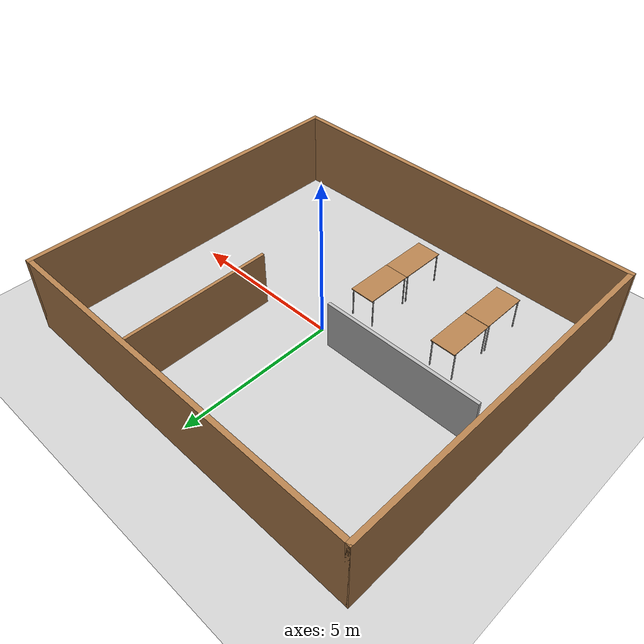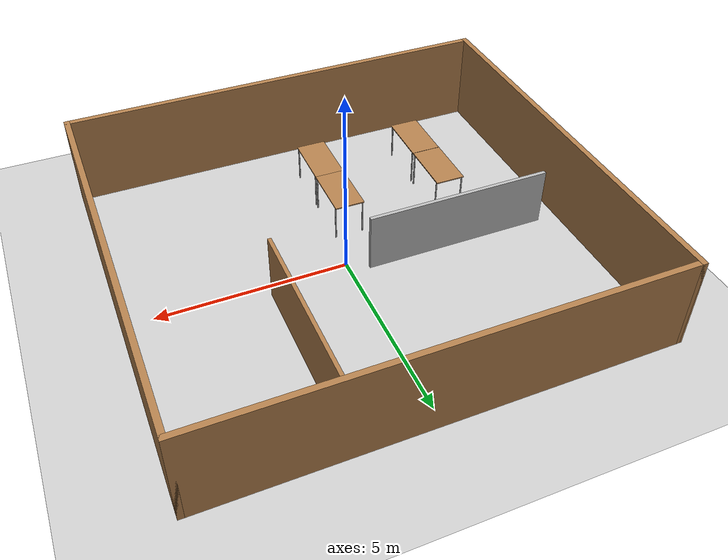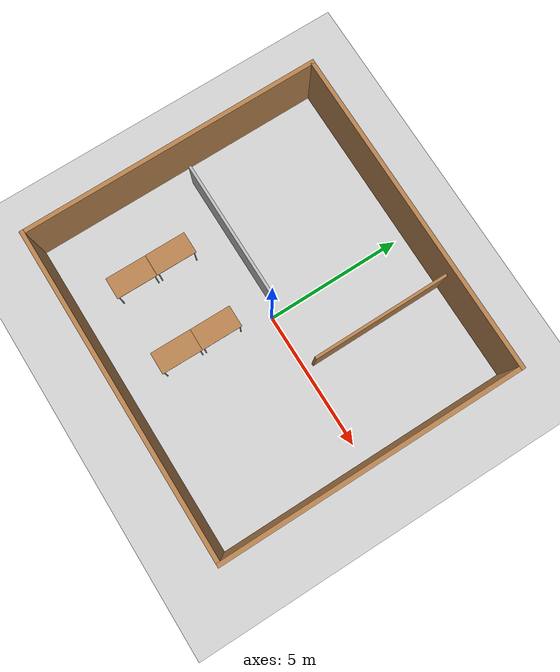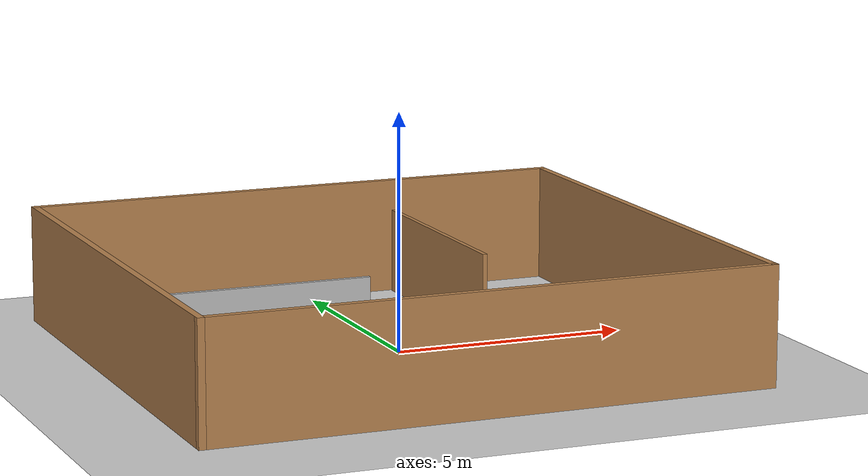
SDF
<sdf version="1.7">
 <world name="default">
  <light name="sun" type="directional">
   <pose>0 0 10 0 -0 0</pose>
   <diffuse>0.8 0.8 0.8 1</diffuse>
   <specular>0.2 0.2 0.2 1</specular>
   <attenuation>
    <range>1000</range>
    <constant>0.9</constant>
    <linear>0.01</linear>
    <quadratic>0.001</quadratic>
   </attenuation>
   <direction>-0.5 0.1 -0.9</direction>
   <spot><inner_angle>0</inner_angle><outer_angle>0</outer_angle><falloff>0</falloff></spot>
  </light>
  <model name="ground_plane">
   <static>1</static>
   <link name="link">
    <collision name="collision">
     <geometry><plane><normal>0 0 1</normal><size>100 100</size></plane></geometry>
     <surface>
      <contact><collide_bitmask>65535</collide_bitmask></contact>
      <friction><ode><mu>100</mu><mu2>50</mu2></ode></friction>
     </surface>
    </collision>
    <visual name="visual">
     <cast_shadows>0</cast_shadows>
     <geometry><plane><normal>0 0 1</normal><size>100 100</size></plane></geometry>
     <material>
      <script><uri>file://media/materials/scripts/gazebo.material</uri><name>Gazebo/Grey</name></script>
     </material>
    </visual>
   </link>
  </model>
  <gravity>0 0 -9.8</gravity>
  <magnetic_field>6e-06 2.3e-05 -4.2e-05</magnetic_field>
  <atmosphere type="adiabatic"/>
  <physics type="ode">
   <max_step_size>0.001</max_step_size>
   <real_time_factor>1</real_time_factor>
   <real_time_update_rate>1000</real_time_update_rate>
  </physics>
  <scene><ambient>0.4 0.4 0.4 1</ambient><background>0.7 0.7 0.7 1</background><shadows>1</shadows></scene>
  <spherical_coordinates>
   <surface_model>EARTH_WGS84</surface_model>
   <latitude_deg>0</latitude_deg>
   <longitude_deg>0</longitude_deg>
   <elevation>0</elevation>
   <heading_deg>0</heading_deg>
  </spherical_coordinates>
  <model name="wall_frame_1">
   <pose>-0.21485 -0.002157 0 0 -0 0</pose>
   <link name="Wall_10">
    <collision name="Wall_10_Collision">
     <geometry><box><size>11 0.15 2.5</size></box></geometry>
     <pose>0 0 1.25 0 -0 0</pose>
    </collision>
    <visual name="Wall_10_Visual">
     <pose>0 0 1.25 0 -0 0</pose>
     <geometry><box><size>11 0.15 2.5</size></box></geometry>
     <material>
      <script><uri>file://media/materials/scripts/gazebo.material</uri><name>Gazebo/Wood</name></script>
      <ambient>1 1 1 1</ambient>
     </material>
     <meta><layer>0</layer></meta>
    </visual>
    <pose>-5.925 -0 0 0 -0 1.5708</pose>
   </link>
   <link name="Wall_7">
    <collision name="Wall_7_Collision">
     <geometry><box><size>12 0.15 2.5</size></box></geometry>
     <pose>0 0 1.25 0 -0 0</pose>
    </collision>
    <visual name="Wall_7_Visual">
     <pose>0 0 1.25 0 -0 0</pose>
     <geometry><box><size>12 0.15 2.5</size></box></geometry>
     <material>
      <script><uri>file://media/materials/scripts/gazebo.material</uri><name>Gazebo/Wood</name></script>
      <ambient>1 1 1 1</ambient>
     </material>
     <meta><layer>0</layer></meta>
    </visual>
    <pose>0 5.425 0 0 -0 0</pose>
   </link>
   <link name="Wall_8">
    <collision name="Wall_8_Collision">
     <geometry><box><size>11 0.15 2.5</size></box></geometry>
     <pose>0 0 1.25 0 -0 0</pose>
    </collision>
    <visual name="Wall_8_Visual">
     <pose>0 0 1.25 0 -0 0</pose>
     <geometry><box><size>11 0.15 2.5</size></box></geometry>
     <material>
      <script><uri>file://media/materials/scripts/gazebo.material</uri><name>Gazebo/Wood</name></script>
      <ambient>1 1 1 1</ambient>
     </material>
     <meta><layer>0</layer></meta>
    </visual>
    <pose>5.925 -0 0 0 -0 -1.5708</pose>
   </link>
   <link name="Wall_9">
    <collision name="Wall_9_Collision">
     <geometry><box><size>12 0.15 2.5</size></box></geometry>
     <pose>0 0 1.25 0 -0 0</pose>
    </collision>
    <visual name="Wall_9_Visual">
     <pose>0 0 1.25 0 -0 0</pose>
     <geometry><box><size>12 0.15 2.5</size></box></geometry>
     <material>
      <script><uri>file://media/materials/scripts/gazebo.material</uri><name>Gazebo/Wood</name></script>
      <ambient>1 1 1 1</ambient>
     </material>
     <meta><layer>0</layer></meta>
    </visual>
    <pose>0 -5.425 0 0 -0 3.14159</pose>
   </link>
   <static>1</static>
  </model>
  <model name="fence">
   <static>1</static>
   <link name="link">
    <pose>0 0 0.915 0 -0 0</pose>
    <collision name="collision"><geometry><box><size>0.1 5 1.83</size></box></geometry></collision>
    <visual name="visual">
     <cast_shadows>0</cast_shadows>
     <geometry><box><size>0.1 5 1.83</size></box></geometry>
     <material>
      <script>
       <uri>model://fence/materials/scripts</uri>
       <uri>model://fence/materials/textures</uri>
       <name>Fence/WoodBoarding</name>
      </script>
     </material>
    </visual>
   </link>
   <pose>2.05573 2.80616 0 0 0 -3.13783</pose>
  </model>
  <model name="Table">
   <static>1</static>
   <link name="link">
    <collision name="surface">
     <pose>0 0 1 0 -0 0</pose>
     <geometry><box><size>1.5 0.8 0.03</size></box></geometry>
     <surface><friction><ode><mu>0.6</mu><mu2>0.6</mu2></ode></friction></surface>
    </collision>
    <visual name="visual1">
     <pose>0 0 1 0 -0 0</pose>
     <geometry><box><size>1.5 0.8 0.03</size></box></geometry>
     <material>
      <diffuse>1 1 1 1</diffuse>
      <script><uri>file://media/materials/scripts/gazebo.material</uri><name>Gazebo/Wood</name></script>
      <pbr><metal><albedo_map>model://Table/Table_Diffuse.jpg</albedo_map></metal></pbr>
     </material>
    </visual>
    <collision name="front_left_leg_collision">
     <pose>0.68 0.38 0.5 0 -0 0</pose>
     <geometry><cylinder><radius>0.02</radius><length>1</length></cylinder></geometry>
    </collision>
    <visual name="front_left_leg_visual">
     <pose>0.68 0.38 0.5 0 -0 0</pose>
     <geometry><cylinder><radius>0.02</radius><length>1</length></cylinder></geometry>
     <material>
      <diffuse>0.5 0.5 0.5 1</diffuse>
      <script><uri>file://media/materials/scripts/gazebo.material</uri><name>Gazebo/Grey</name></script>
     </material>
    </visual>
    <collision name="front_right_leg_collision">
     <pose>0.68 -0.38 0.5 0 -0 0</pose>
     <geometry><cylinder><radius>0.02</radius><length>1</length></cylinder></geometry>
    </collision>
    <visual name="front_right_leg_visual">
     <pose>0.68 -0.38 0.5 0 -0 0</pose>
     <geometry><cylinder><radius>0.02</radius><length>1</length></cylinder></geometry>
     <material>
      <diffuse>0.5 0.5 0.5 1</diffuse>
      <script><uri>file://media/materials/scripts/gazebo.material</uri><name>Gazebo/Grey</name></script>
     </material>
    </visual>
    <collision name="back_right_leg_collision">
     <pose>-0.68 -0.38 0.5 0 -0 0</pose>
     <geometry><cylinder><radius>0.02</radius><length>1</length></cylinder></geometry>
    </collision>
    <visual name="back_right_leg_visual">
     <pose>-0.68 -0.38 0.5 0 -0 0</pose>
     <geometry><cylinder><radius>0.02</radius><length>1</length></cylinder></geometry>
     <material>
      <diffuse>0.5 0.5 0.5 1</diffuse>
      <script><uri>file://media/materials/scripts/gazebo.material</uri><name>Gazebo/Grey</name></script>
     </material>
    </visual>
    <collision name="back_left_leg_collision">
     <pose>-0.68 0.38 0.5 0 -0 0</pose>
     <geometry><cylinder><radius>0.02</radius><length>1</length></cylinder></geometry>
    </collision>
    <visual name="back_left_leg_visual">
     <pose>-0.68 0.38 0.5 0 -0 0</pose>
     <geometry><cylinder><radius>0.02</radius><length>1</length></cylinder></geometry>
     <material>
      <diffuse>0.5 0.5 0.5 1</diffuse>
      <script><uri>file://media/materials/scripts/gazebo.material</uri><name>Gazebo/Grey</name></script>
     </material>
    </visual>
   </link>
   <pose>-3.48472 -3.28269 0 0 0 -1.57957</pose>
  </model>
  <model name="Table_0">
   <static>1</static>
   <link name="link">
    <collision name="surface">
     <pose>0 0 1 0 -0 0</pose>
     <geometry><box><size>1.5 0.8 0.03</size></box></geometry>
     <surface><friction><ode><mu>0.6</mu><mu2>0.6</mu2></ode></friction></surface>
    </collision>
    <visual name="visual1">
     <pose>0 0 1 0 -0 0</pose>
     <geometry><box><size>1.5 0.8 0.03</size></box></geometry>
     <material>
      <diffuse>1 1 1 1</diffuse>
      <script><uri>file://media/materials/scripts/gazebo.material</uri><name>Gazebo/Wood</name></script>
      <pbr><metal><albedo_map>model://Table/Table_Diffuse.jpg</albedo_map></metal></pbr>
     </material>
    </visual>
    <collision name="front_left_leg_collision">
     <pose>0.68 0.38 0.5 0 -0 0</pose>
     <geometry><cylinder><radius>0.02</radius><length>1</length></cylinder></geometry>
    </collision>
    <visual name="front_left_leg_visual">
     <pose>0.68 0.38 0.5 0 -0 0</pose>
     <geometry><cylinder><radius>0.02</radius><length>1</length></cylinder></geometry>
     <material>
      <diffuse>0.5 0.5 0.5 1</diffuse>
      <script><uri>file://media/materials/scripts/gazebo.material</uri><name>Gazebo/Grey</name></script>
     </material>
    </visual>
    <collision name="front_right_leg_collision">
     <pose>0.68 -0.38 0.5 0 -0 0</pose>
     <geometry><cylinder><radius>0.02</radius><length>1</length></cylinder></geometry>
    </collision>
    <visual name="front_right_leg_visual">
     <pose>0.68 -0.38 0.5 0 -0 0</pose>
     <geometry><cylinder><radius>0.02</radius><length>1</length></cylinder></geometry>
     <material>
      <diffuse>0.5 0.5 0.5 1</diffuse>
      <script><uri>file://media/materials/scripts/gazebo.material</uri><name>Gazebo/Grey</name></script>
     </material>
    </visual>
    <collision name="back_right_leg_collision">
     <pose>-0.68 -0.38 0.5 0 -0 0</pose>
     <geometry><cylinder><radius>0.02</radius><length>1</length></cylinder></geometry>
    </collision>
    <visual name="back_right_leg_visual">
     <pose>-0.68 -0.38 0.5 0 -0 0</pose>
     <geometry><cylinder><radius>0.02</radius><length>1</length></cylinder></geometry>
     <material>
      <diffuse>0.5 0.5 0.5 1</diffuse>
      <script><uri>file://media/materials/scripts/gazebo.material</uri><name>Gazebo/Grey</name></script>
     </material>
    </visual>
    <collision name="back_left_leg_collision">
     <pose>-0.68 0.38 0.5 0 -0 0</pose>
     <geometry><cylinder><radius>0.02</radius><length>1</length></cylinder></geometry>
    </collision>
    <visual name="back_left_leg_visual">
     <pose>-0.68 0.38 0.5 0 -0 0</pose>
     <geometry><cylinder><radius>0.02</radius><length>1</length></cylinder></geometry>
     <material>
      <diffuse>0.5 0.5 0.5 1</diffuse>
      <script><uri>file://media/materials/scripts/gazebo.material</uri><name>Gazebo/Grey</name></script>
     </material>
    </visual>
   </link>
   <pose>-3.47782 -1.77366 0 0 -0 1.56377</pose>
  </model>
  <model name="room_wall_2x5m">
   <link name="link">
    <visual name="visual">
     <geometry><box><size>0.1 5 2</size></box></geometry>
     <material>
      <script>
       <uri>model://room_wall_2x5m/material/script</uri>
       <uri>model://room_wall_2x5m/material/textures</uri>
       <name>Custom/room_wall_2x5m</name>
      </script>
     </material>
    </visual>
    <collision name="collision"><geometry><box><size>0.1 5 2</size></box></geometry></collision>
   </link>
   <static>1</static>
   <pose>-3.03631 0.275897 0.58335 0 0 -1.57088</pose>
  </model>
  <model name="Table_1">
   <static>1</static>
   <link name="link">
    <collision name="surface">
     <pose>0 0 1 0 -0 0</pose>
     <geometry><box><size>1.5 0.8 0.03</size></box></geometry>
     <surface><friction><ode><mu>0.6</mu><mu2>0.6</mu2></ode></friction></surface>
    </collision>
    <visual name="visual1">
     <pose>0 0 1 0 -0 0</pose>
     <geometry><box><size>1.5 0.8 0.03</size></box></geometry>
     <material>
      <diffuse>1 1 1 1</diffuse>
      <script><uri>file://media/materials/scripts/gazebo.material</uri><name>Gazebo/Wood</name></script>
      <pbr><metal><albedo_map>model://Table/Table_Diffuse.jpg</albedo_map></metal></pbr>
     </material>
    </visual>
    <collision name="front_left_leg_collision">
     <pose>0.68 0.38 0.5 0 -0 0</pose>
     <geometry><cylinder><radius>0.02</radius><length>1</length></cylinder></geometry>
    </collision>
    <visual name="front_left_leg_visual">
     <pose>0.68 0.38 0.5 0 -0 0</pose>
     <geometry><cylinder><radius>0.02</radius><length>1</length></cylinder></geometry>
     <material>
      <diffuse>0.5 0.5 0.5 1</diffuse>
      <script><uri>file://media/materials/scripts/gazebo.material</uri><name>Gazebo/Grey</name></script>
     </material>
    </visual>
    <collision name="front_right_leg_collision">
     <pose>0.68 -0.38 0.5 0 -0 0</pose>
     <geometry><cylinder><radius>0.02</radius><length>1</length></cylinder></geometry>
    </collision>
    <visual name="front_right_leg_visual">
     <pose>0.68 -0.38 0.5 0 -0 0</pose>
     <geometry><cylinder><radius>0.02</radius><length>1</length></cylinder></geometry>
     <material>
      <diffuse>0.5 0.5 0.5 1</diffuse>
      <script><uri>file://media/materials/scripts/gazebo.material</uri><name>Gazebo/Grey</name></script>
     </material>
    </visual>
    <collision name="back_right_leg_collision">
     <pose>-0.68 -0.38 0.5 0 -0 0</pose>
     <geometry><cylinder><radius>0.02</radius><length>1</length></cylinder></geometry>
    </collision>
    <visual name="back_right_leg_visual">
     <pose>-0.68 -0.38 0.5 0 -0 0</pose>
     <geometry><cylinder><radius>0.02</radius><length>1</length></cylinder></geometry>
     <material>
      <diffuse>0.5 0.5 0.5 1</diffuse>
      <script><uri>file://media/materials/scripts/gazebo.material</uri><name>Gazebo/Grey</name></script>
     </material>
    </visual>
    <collision name="back_left_leg_collision">
     <pose>-0.68 0.38 0.5 0 -0 0</pose>
     <geometry><cylinder><radius>0.02</radius><length>1</length></cylinder></geometry>
    </collision>
    <visual name="back_left_leg_visual">
     <pose>-0.68 0.38 0.5 0 -0 0</pose>
     <geometry><cylinder><radius>0.02</radius><length>1</length></cylinder></geometry>
     <material>
      <diffuse>0.5 0.5 0.5 1</diffuse>
      <script><uri>file://media/materials/scripts/gazebo.material</uri><name>Gazebo/Grey</name></script>
     </material>
    </visual>
   </link>
   <pose>-0.557535 -1.80165 0 0 0 -1.57658</pose>
  </model>
  <model name="Table_2">
   <static>1</static>
   <link name="link">
    <collision name="surface">
     <pose>0 0 1 0 -0 0</pose>
     <geometry><box><size>1.5 0.8 0.03</size></box></geometry>
     <surface><friction><ode><mu>0.6</mu><mu2>0.6</mu2></ode></friction></surface>
    </collision>
    <visual name="visual1">
     <pose>0 0 1 0 -0 0</pose>
     <geometry><box><size>1.5 0.8 0.03</size></box></geometry>
     <material>
      <diffuse>1 1 1 1</diffuse>
      <script><uri>file://media/materials/scripts/gazebo.material</uri><name>Gazebo/Wood</name></script>
      <pbr><metal><albedo_map>model://Table/Table_Diffuse.jpg</albedo_map></metal></pbr>
     </material>
    </visual>
    <collision name="front_left_leg_collision">
     <pose>0.68 0.38 0.5 0 -0 0</pose>
     <geometry><cylinder><radius>0.02</radius><length>1</length></cylinder></geometry>
    </collision>
    <visual name="front_left_leg_visual">
     <pose>0.68 0.38 0.5 0 -0 0</pose>
     <geometry><cylinder><radius>0.02</radius><length>1</length></cylinder></geometry>
     <material>
      <diffuse>0.5 0.5 0.5 1</diffuse>
      <script><uri>file://media/materials/scripts/gazebo.material</uri><name>Gazebo/Grey</name></script>
     </material>
    </visual>
    <collision name="front_right_leg_collision">
     <pose>0.68 -0.38 0.5 0 -0 0</pose>
     <geometry><cylinder><radius>0.02</radius><length>1</length></cylinder></geometry>
    </collision>
    <visual name="front_right_leg_visual">
     <pose>0.68 -0.38 0.5 0 -0 0</pose>
     <geometry><cylinder><radius>0.02</radius><length>1</length></cylinder></geometry>
     <material>
      <diffuse>0.5 0.5 0.5 1</diffuse>
      <script><uri>file://media/materials/scripts/gazebo.material</uri><name>Gazebo/Grey</name></script>
     </material>
    </visual>
    <collision name="back_right_leg_collision">
     <pose>-0.68 -0.38 0.5 0 -0 0</pose>
     <geometry><cylinder><radius>0.02</radius><length>1</length></cylinder></geometry>
    </collision>
    <visual name="back_right_leg_visual">
     <pose>-0.68 -0.38 0.5 0 -0 0</pose>
     <geometry><cylinder><radius>0.02</radius><length>1</length></cylinder></geometry>
     <material>
      <diffuse>0.5 0.5 0.5 1</diffuse>
      <script><uri>file://media/materials/scripts/gazebo.material</uri><name>Gazebo/Grey</name></script>
     </material>
    </visual>
    <collision name="back_left_leg_collision">
     <pose>-0.68 0.38 0.5 0 -0 0</pose>
     <geometry><cylinder><radius>0.02</radius><length>1</length></cylinder></geometry>
    </collision>
    <visual name="back_left_leg_visual">
     <pose>-0.68 0.38 0.5 0 -0 0</pose>
     <geometry><cylinder><radius>0.02</radius><length>1</length></cylinder></geometry>
     <material>
      <diffuse>0.5 0.5 0.5 1</diffuse>
      <script><uri>file://media/materials/scripts/gazebo.material</uri><name>Gazebo/Grey</name></script>
     </material>
    </visual>
   </link>
   <pose>-0.572268 -3.2992 0 0 0 -1.58083</pose>
  </model>
 </world>
</sdf>
